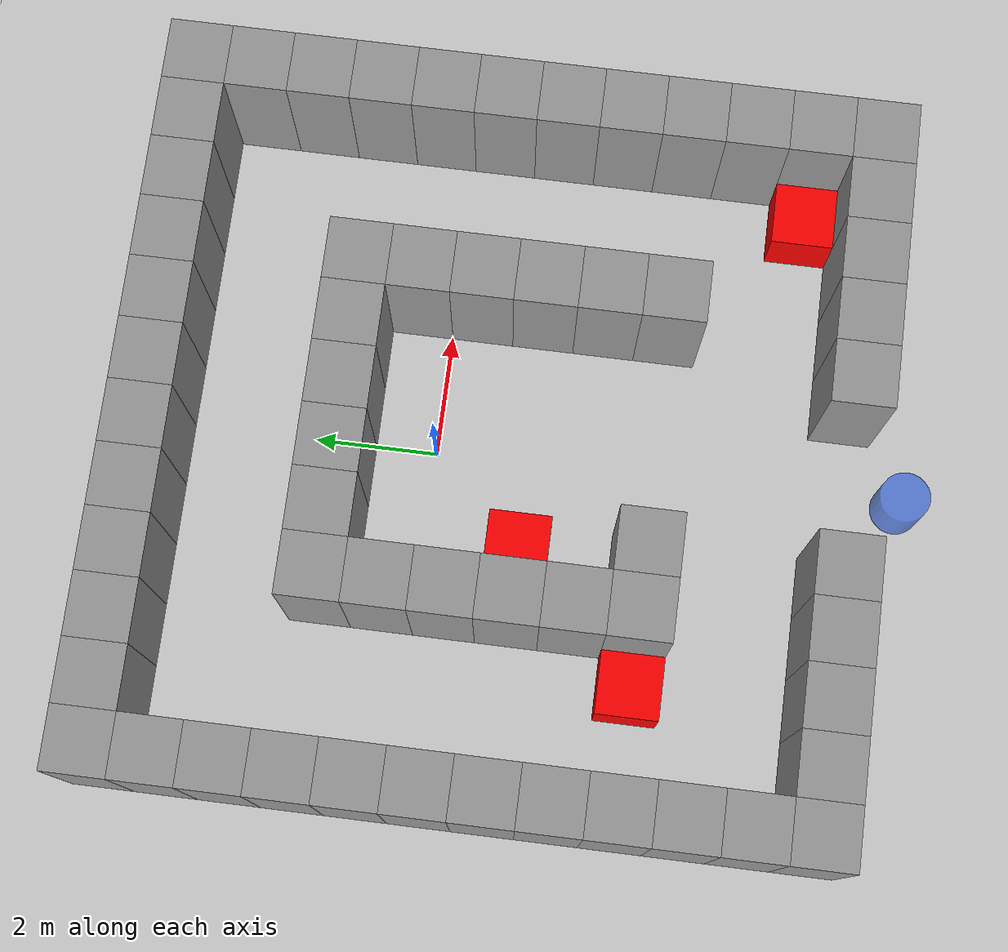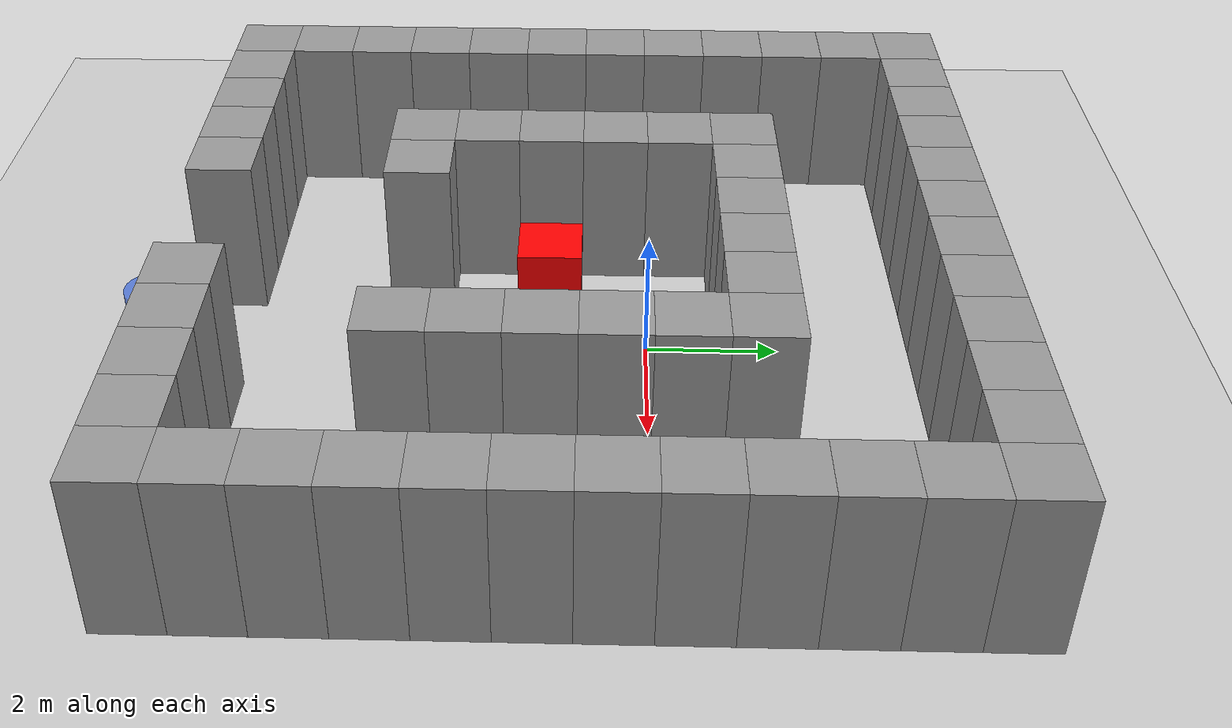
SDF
<?xml version="1.0" ?>
<sdf version="1.6">
  <world name="grid_house_world">

    <!-- =======================
         Top‐down camera (z = 50 m, looking straight down)
         ======================= -->
    <gui>
      <camera name="top_down_camera">
        <!-- pose: x, y, z, roll, pitch, yaw -->
        <!-- pitch = –1.5708 => straight down -->
        <pose>0 0 +100  -180 -1.5708 0</pose>
      </camera>
    </gui>

    <!-- =======================
         1) STANDARD FLOOR + SUN
         ======================= -->
    <include>
      <uri>model://ground_plane</uri>
    </include>
    <include>
      <uri>model://sun</uri>
    </include>

    <!-- ROW 0: cols 0..11 are all walls -->
    <model name="wall_0_0">
      <static>true</static>
      <link name="link">
        <collision name="collision">
          <geometry>
            <box><size>1 1 2.5</size></box>
          </geometry>
        </collision>
        <visual name="visual">
          <geometry>
            <box><size>1 1 2.5</size></box>
          </geometry>
          <material>
            <ambient>0.6 0.6 0.6 1</ambient>
            <diffuse>0.6 0.6 0.6 1</diffuse>
          </material>
        </visual>
      </link>
      <!-- col=0 -->
      <pose>-5.500  4.500  1.25  0 0 0</pose>
    </model>

    <model name="wall_0_1">
      <static>true</static>
      <link name="link">
        <collision name="collision">
          <geometry>
            <box><size>1 1 2.5</size></box>
          </geometry>
        </collision>
        <visual name="visual">
          <geometry>
            <box><size>1 1 2.5</size></box>
          </geometry>
          <material>
            <ambient>0.6 0.6 0.6 1</ambient>
            <diffuse>0.6 0.6 0.6 1</diffuse>
          </material>
        </visual>
      </link>
      <!-- col=1 →  -->
      <pose>-4.500  4.500  1.25  0 0 0</pose>
    </model>

    <model name="wall_0_2">
      <static>true</static>
      <link name="link">
        <collision name="collision">
          <geometry>
            <box><size>1 1 2.5</size></box>
          </geometry>
        </collision>
        <visual name="visual">
          <geometry>
            <box><size>1 1 2.5</size></box>
          </geometry>
          <material>
            <ambient>0.6 0.6 0.6 1</ambient>
            <diffuse>0.6 0.6 0.6 1</diffuse>
          </material>
        </visual>
      </link>
      <!-- col=2 → -->
      <pose>-3.500  4.500  1.25  0 0 0</pose>
    </model>

    <model name="wall_0_3">
      <static>true</static>
      <link name="link">
        <collision name="collision">
          <geometry>
            <box><size>1 1 2.5</size></box>
          </geometry>
        </collision>
        <visual name="visual">
          <geometry>
            <box><size>1 1 2.5</size></box>
          </geometry>
          <material>
            <ambient>0.6 0.6 0.6 1</ambient>
            <diffuse>0.6 0.6 0.6 1</diffuse>
          </material>
        </visual>
      </link>
      <!-- col=3 -->
      <pose>-2.500  4.500  1.25  0 0 0</pose>
    </model>

    <model name="wall_0_4">
      <static>true</static>
      <link name="link">
        <collision name="collision">
          <geometry>
            <box><size>1 1 2.5</size></box>
          </geometry>
        </collision>
        <visual name="visual">
          <geometry>
            <box><size>1 1 2.5</size></box>
          </geometry>
          <material>
            <ambient>0.6 0.6 0.6 1</ambient>
            <diffuse>0.6 0.6 0.6 1</diffuse>
          </material>
        </visual>
      </link>
      <!-- col=4  -->
      <pose>-1.500  4.500  1.25  0 0 0</pose>
    </model>

    <model name="wall_0_5">
      <static>true</static>
      <link name="link">
        <collision name="collision">
          <geometry>
            <box><size>1 1 2.5</size></box>
          </geometry>
        </collision>
        <visual name="visual">
          <geometry>
            <box><size>1 1 2.5</size></box>
          </geometry>
          <material>
            <ambient>0.6 0.6 0.6 1</ambient>
            <diffuse>0.6 0.6 0.6 1</diffuse>
          </material>
        </visual>
      </link>
      <!-- col=5  -->
      <pose> -0.500  4.500  1.25  0 0 0</pose>
    </model>

    <model name="wall_0_6">
      <static>true</static>
      <link name="link">
        <collision name="collision">
          <geometry>
            <box><size>1 1 2.5</size></box>
          </geometry>
        </collision>
        <visual name="visual">
          <geometry>
            <box><size>1 1 2.5</size></box>
          </geometry>
          <material>
            <ambient>0.6 0.6 0.6 1</ambient>
            <diffuse>0.6 0.6 0.6 1</diffuse>
          </material>
        </visual>
      </link>
      <!-- col=6  -->
      <pose>+0.500  4.500  1.25  0 0 0</pose>
    </model>

    <model name="wall_0_7">
      <static>true</static>
      <link name="link">
        <collision name="collision">
          <geometry>
            <box><size>1 1 2.5</size></box>
          </geometry>
        </collision>
        <visual name="visual">
          <geometry>
            <box><size>1 1 2.5</size></box>
          </geometry>
          <material>
            <ambient>0.6 0.6 0.6 1</ambient>
            <diffuse>0.6 0.6 0.6 1</diffuse>
          </material>
        </visual>
      </link>
      <!-- col=7  -->
      <pose>+1.500  4.500  1.25  0 0 0</pose>
    </model>

    <model name="wall_0_8">
      <static>true</static>
      <link name="link">
        <collision name="collision">
          <geometry>
            <box><size>1 1 2.5</size></box>
          </geometry>
        </collision>
        <visual name="visual">
          <geometry>
            <box><size>1 1 2.5</size></box>
          </geometry>
          <material>
            <ambient>0.6 0.6 0.6 1</ambient>
            <diffuse>0.6 0.6 0.6 1</diffuse>
          </material>
        </visual>
      </link>
      <!-- col=8 -->
      <pose>+2.500  4.500  1.25  0 0 0</pose>
    </model>

    <model name="wall_0_9">
      <static>true</static>
      <link name="link">
        <collision name="collision">
          <geometry>
            <box><size>1 1 2.5</size></box>
          </geometry>
        </collision>
        <visual name="visual">
          <geometry>
            <box><size>1 1 2.5</size></box>
          </geometry>
          <material>
            <ambient>0.6 0.6 0.6 1</ambient>
            <diffuse>0.6 0.6 0.6 1</diffuse>
          </material>
        </visual>
      </link>
      <!-- col=9 -->
      <pose>+3.500  4.500  1.25  0 0 0</pose>
    </model>

    <model name="wall_0_10">
      <static>true</static>
      <link name="link">
        <collision name="collision">
          <geometry>
            <box><size>1 1 2.5</size></box>
          </geometry>
        </collision>
        <visual name="visual">
          <geometry>
            <box><size>1 1 2.5</size></box>
          </geometry>
          <material>
            <ambient>0.6 0.6 0.6 1</ambient>
            <diffuse>0.6 0.6 0.6 1</diffuse>
          </material>
        </visual>
      </link>
      <!-- col=10 -->
      <pose>+4.500  4.500  1.25  0 0 0</pose>
    </model>

    <model name="wall_0_11">
      <static>true</static>
      <link name="link">
        <collision name="collision">
          <geometry>
            <box><size>1 1 2.5</size></box>
          </geometry>
        </collision>
        <visual name="visual">
          <geometry>
            <box><size>1 1 2.5</size></box>
          </geometry>
          <material>
            <ambient>0.6 0.6 0.6 1</ambient>
            <diffuse>0.6 0.6 0.6 1</diffuse>
          </material>
        </visual>
      </link>
      <pose>+5.500  4.500  1.25  0 0 0</pose>
    </model>

    <model name="wall_1_0">
      <static>true</static>
      <link name="link">
        <collision name="collision">
          <geometry>
            <box><size>1 1 2.5</size></box>
          </geometry>
        </collision>
        <visual name="visual">
          <geometry>
            <box><size>1 1 2.5</size></box>
          </geometry>
          <material>
            <ambient>0.6 0.6 0.6 1</ambient>
            <diffuse>0.6 0.6 0.6 1</diffuse>
          </material>
        </visual>
      </link>
      <pose>-5.500  3.500  1.25  0 0 0</pose>
    </model>

    <model name="wall_1_11">
      <static>true</static>
      <link name="link">
        <collision name="collision">
          <geometry>
            <box><size>1 1 2.5</size></box>
          </geometry>
        </collision>
        <visual name="visual">
          <geometry>
            <box><size>1 1 2.5</size></box>
          </geometry>
          <material>
            <ambient>0.6 0.6 0.6 1</ambient>
            <diffuse>0.6 0.6 0.6 1</diffuse>
          </material>
        </visual>
      </link>
      <pose>+5.500  3.500  1.25  0 0 0</pose>
    </model>

    <model name="wall_2_0">
      <static>true</static>
      <link name="link">
        <collision name="collision">
          <geometry>
            <box><size>1 1 2.5</size></box>
          </geometry>
        </collision>
        <visual name="visual">
          <geometry>
            <box><size>1 1 2.5</size></box>
          </geometry>
          <material>
            <ambient>0.6 0.6 0.6 1</ambient>
            <diffuse>0.6 0.6 0.6 1</diffuse>
          </material>
        </visual>
      </link>
      <pose>-5.500  2.5000  1.25  0 0 0</pose>
    </model>

    <model name="wall_2_11">
      <static>true</static>
      <link name="link">
        <collision name="collision">
          <geometry>
            <box><size>1 1 2.5</size></box>
          </geometry>
        </collision>
        <visual name="visual">
          <geometry>
            <box><size>1 1 2.5</size></box>
          </geometry>
          <material>
            <ambient>0.6 0.6 0.6 1</ambient>
            <diffuse>0.6 0.6 0.6 1</diffuse>
          </material>
        </visual>
      </link>
      <pose>+5.500  2.5000  1.25  0 0 0</pose>
    </model>

    <model name="wall_3_0">
      <static>true</static>
      <link name="link">
        <collision name="collision">
          <geometry>
            <box><size>1 1 2.5</size></box>
          </geometry>
        </collision>
        <visual name="visual">
          <geometry>
            <box><size>1 1 2.5</size></box>
          </geometry>
          <material>
            <ambient>0.6 0.6 0.6 1</ambient>
            <diffuse>0.6 0.6 0.6 1</diffuse>
          </material>
        </visual>
      </link>
      <pose>-5.500  1.500  1.25  0 0 0</pose>
    </model>

    <model name="wall_3_3">
      <static>true</static>
      <link name="link">
        <collision name="collision">
          <geometry>
            <box><size>1 1 2.5</size></box>
          </geometry>
        </collision>
        <visual name="visual">
          <geometry>
            <box><size>1 1 2.5</size></box>
          </geometry>
          <material>
            <ambient>0.6 0.6 0.6 1</ambient>
            <diffuse>0.6 0.6 0.6 1</diffuse>
          </material>
        </visual>
      </link>
      <pose>-2.500  1.500  1.25  0 0 0</pose>
    </model>

    <model name="wall_3_4">
      <static>true</static>
      <link name="link">
        <collision name="collision">
          <geometry>
            <box><size>1 1 2.5</size></box>
          </geometry>
        </collision>
        <visual name="visual">
          <geometry>
            <box><size>1 1 2.5</size></box>
          </geometry>
          <material>
            <ambient>0.6 0.6 0.6 1</ambient>
            <diffuse>0.6 0.6 0.6 1</diffuse>
          </material>
        </visual>
      </link>
      <pose>-1.500  1.500  1.25  0 0 0</pose>
    </model>

    <model name="wall_3_5">
      <static>true</static>
      <link name="link">
        <collision name="collision">
          <geometry>
            <box><size>1 1 2.5</size></box>
          </geometry>
        </collision>
        <visual name="visual">
          <geometry>
            <box><size>1 1 2.5</size></box>
          </geometry>
          <material>
            <ambient>0.6 0.6 0.6 1</ambient>
            <diffuse>0.6 0.6 0.6 1</diffuse>
          </material>
        </visual>
      </link>
      <pose> -0.500  1.500  1.25  0 0 0</pose>
    </model>

    <model name="wall_3_6">
      <static>true</static>
      <link name="link">
        <collision name="collision">
          <geometry>
            <box><size>1 1 2.5</size></box>
          </geometry>
        </collision>
        <visual name="visual">
          <geometry>
            <box><size>1 1 2.5</size></box>
          </geometry>
          <material>
            <ambient>0.6 0.6 0.6 1</ambient>
            <diffuse>0.6 0.6 0.6 1</diffuse>
          </material>
        </visual>
      </link>
      <pose>+0.500  1.500  1.25  0 0 0</pose>
    </model>

    <model name="wall_3_7">
      <static>true</static>
      <link name="link">
        <collision name="collision">
          <geometry>
            <box><size>1 1 2.5</size></box>
          </geometry>
        </collision>
        <visual name="visual">
          <geometry>
            <box><size>1 1 2.5</size></box>
          </geometry>
          <material>
            <ambient>0.6 0.6 0.6 1</ambient>
            <diffuse>0.6 0.6 0.6 1</diffuse>
          </material>
        </visual>
      </link>
      <pose>+1.500  1.500  1.25  0 0 0</pose>
    </model>

    <model name="wall_3_8">
      <static>true</static>
      <link name="link">
        <collision name="collision">
          <geometry>
            <box><size>1 1 2.5</size></box>
          </geometry>
        </collision>
        <visual name="visual">
          <geometry>
            <box><size>1 1 2.5</size></box>
          </geometry>
          <material>
            <ambient>0.6 0.6 0.6 1</ambient>
            <diffuse>0.6 0.6 0.6 1</diffuse>
          </material>
        </visual>
      </link>
      <pose>+2.500  1.500  1.25  0 0 0</pose>
    </model>

    <model name="wall_3_11">
      <static>true</static>
      <link name="link">
        <collision name="collision">
          <geometry>
            <box><size>1 1 2.5</size></box>
          </geometry>
        </collision>
        <visual name="visual">
          <geometry>
            <box><size>1 1 2.5</size></box>
          </geometry>
          <material>
            <ambient>0.6 0.6 0.6 1</ambient>
            <diffuse>0.6 0.6 0.6 1</diffuse>
          </material>
        </visual>
      </link>
      <pose>+5.500  1.500  1.25  0 0 0</pose>
    </model>

    <model name="wall_4_0">
      <static>true</static>
      <link name="link">
        <collision name="collision">
          <geometry>
            <box><size>1 1 2.5</size></box>
          </geometry>
        </collision>
        <visual name="visual">
          <geometry>
            <box><size>1 1 2.5</size></box>
          </geometry>
          <material>
            <ambient>0.6 0.6 0.6 1</ambient>
            <diffuse>0.6 0.6 0.6 1</diffuse>
          </material>
        </visual>
      </link>
      <pose>-5.500  0.500  1.25  0 0 0</pose>
    </model>

    <model name="wall_4_3">
      <static>true</static>
      <link name="link">
        <collision name="collision">
          <geometry>
            <box><size>1 1 2.5</size></box>
          </geometry>
        </collision>
        <visual name="visual">
          <geometry>
            <box><size>1 1 2.5</size></box>
          </geometry>
          <material>
            <ambient>0.6 0.6 0.6 1</ambient>
            <diffuse>0.6 0.6 0.6 1</diffuse>
          </material>
        </visual>
      </link>
      <pose>-2.500  0.500  1.25  0 0 0</pose>
    </model>

    <model name="wall_4_8">
      <static>true</static>
      <link name="link">
        <collision name="collision">
          <geometry>
            <box><size>1 1 2.5</size></box>
          </geometry>
        </collision>
        <visual name="visual">
          <geometry>
            <box><size>1 1 2.5</size></box>
          </geometry>
          <material>
            <ambient>0.6 0.6 0.6 1</ambient>
            <diffuse>0.6 0.6 0.6 1</diffuse>
          </material>
        </visual>
      </link>
      <pose>+2.500  0.500  1.25  0 0 0</pose>
    </model>

    <model name="wall_4_11">
      <static>true</static>
      <link name="link">
        <collision name="collision">
          <geometry>
            <box><size>1 1 2.5</size></box>
          </geometry>
        </collision>
        <visual name="visual">
          <geometry>
            <box><size>1 1 2.5</size></box>
          </geometry>
          <material>
            <ambient>0.6 0.6 0.6 1</ambient>
            <diffuse>0.6 0.6 0.6 1</diffuse>
          </material>
        </visual>
      </link>
      <pose>+5.500  0.500  1.25  0 0 0</pose>
    </model>

    <model name="wall_5_0">
      <static>true</static>
      <link name="link">
        <collision name="collision">
          <geometry>
            <box><size>1 1 2.5</size></box>
          </geometry>
        </collision>
        <visual name="visual">
          <geometry>
            <box><size>1 1 2.5</size></box>
          </geometry>
          <material>
            <ambient>0.6 0.6 0.6 1</ambient>
            <diffuse>0.6 0.6 0.6 1</diffuse>
          </material>
        </visual>
      </link>
      <pose>-5.500  -0.500  1.25  0 0 0</pose>
    </model>

    <model name="wall_5_3">
      <static>true</static>
      <link name="link">
        <collision name="collision">
          <geometry>
            <box><size>1 1 2.5</size></box>
          </geometry>
        </collision>
        <visual name="visual">
          <geometry>
            <box><size>1 1 2.5</size></box>
          </geometry>
          <material>
            <ambient>0.6 0.6 0.6 1</ambient>
            <diffuse>0.6 0.6 0.6 1</diffuse>
          </material>
        </visual>
      </link>
      <pose>-2.500  -0.500  1.25  0 0 0</pose>
    </model>

    <model name="wall_5_8">
      <static>true</static>
      <link name="link">
        <collision name="collision">
          <geometry>
            <box><size>1 1 2.5</size></box>
          </geometry>
        </collision>
        <visual name="visual">
          <geometry>
            <box><size>1 1 2.5</size></box>
          </geometry>
          <material>
            <ambient>0.6 0.6 0.6 1</ambient>
            <diffuse>0.6 0.6 0.6 1</diffuse>
          </material>
        </visual>
      </link>
      <pose>+2.500  -0.500  1.25  0 0 0</pose>
    </model>

    <model name="wall_5_11">
      <static>true</static>
      <link name="link">
        <collision name="collision">
          <geometry>
            <box><size>1 1 2.5</size></box>
          </geometry>
        </collision>
        <visual name="visual">
          <geometry>
            <box><size>1 1 2.5</size></box>
          </geometry>
          <material>
            <ambient>0.6 0.6 0.6 1</ambient>
            <diffuse>0.6 0.6 0.6 1</diffuse>
          </material>
        </visual>
      </link>
      <pose>+5.500  -0.500  1.25  0 0 0</pose>
    </model>

    <model name="wall_6_0">
      <static>true</static>
      <link name="link">
        <collision name="collision">
          <geometry>
            <box><size>1 1 2.5</size></box>
          </geometry>
        </collision>
        <visual name="visual">
          <geometry>
            <box><size>1 1 2.5</size></box>
          </geometry>
          <material>
            <ambient>0.6 0.6 0.6 1</ambient>
            <diffuse>0.6 0.6 0.6 1</diffuse>
          </material>
        </visual>
      </link>
      <pose>-5.500 -1.500  1.25  0 0 0</pose>
    </model>

    <model name="wall_6_3">
      <static>true</static>
      <link name="link">
        <collision name="collision">
          <geometry>
            <box><size>1 1 2.5</size></box>
          </geometry>
        </collision>
        <visual name="visual">
          <geometry>
            <box><size>1 1 2.5</size></box>
          </geometry>
          <material>
            <ambient>0.6 0.6 0.6 1</ambient>
            <diffuse>0.6 0.6 0.6 1</diffuse>
          </material>
        </visual>
      </link>
      <pose>-2.500 -1.500  1.25  0 0 0</pose>
    </model>

    <model name="wall_6_8">
      <static>true</static>
      <link name="link">
        <collision name="collision">
          <geometry>
            <box><size>1 1 2.5</size></box>
          </geometry>
        </collision>
        <visual name="visual">
          <geometry>
            <box><size>1 1 2.5</size></box>
          </geometry>
          <material>
            <ambient>0.6 0.6 0.6 1</ambient>
            <diffuse>0.6 0.6 0.6 1</diffuse>
          </material>
        </visual>
      </link>
      <pose>+2.500 -1.500  1.25  0 0 0</pose>
    </model>

    <model name="wall_6_11">
      <static>true</static>
      <link name="link">
        <collision name="collision">
          <geometry>
            <box><size>1 1 2.5</size></box>
          </geometry>
        </collision>
        <visual name="visual">
          <geometry>
            <box><size>1 1 2.5</size></box>
          </geometry>
          <material>
            <ambient>0.6 0.6 0.6 1</ambient>
            <diffuse>0.6 0.6 0.6 1</diffuse>
          </material>
        </visual>
      </link>
      <pose>+5.500 -1.500  1.25  0 0 0</pose>
    </model>

    <model name="wall_7_0">
      <static>true</static>
      <link name="link">
        <collision name="collision">
          <geometry>
            <box><size>1 1 2.5</size></box>
          </geometry>
        </collision>
        <visual name="visual">
          <geometry>
            <box><size>1 1 2.5</size></box>
          </geometry>
          <material>
            <ambient>0.6 0.6 0.6 1</ambient>
            <diffuse>0.6 0.6 0.6 1</diffuse>
          </material>
        </visual>
      </link>
      <pose>-5.500 -2.500  1.25  0 0 0</pose>
    </model>

    <model name="wall_7_3">
      <static>true</static>
      <link name="link">
        <collision name="collision">
          <geometry>
            <box><size>1 1 2.5</size></box>
          </geometry>
        </collision>
        <visual name="visual">
          <geometry>
            <box><size>1 1 2.5</size></box>
          </geometry>
          <material>
            <ambient>0.6 0.6 0.6 1</ambient>
            <diffuse>0.6 0.6 0.6 1</diffuse>
          </material>
        </visual>
      </link>
      <pose>-2.500 -2.500  1.25  0 0 0</pose>
    </model>

    <model name="wall_7_8">
      <static>true</static>
      <link name="link">
        <collision name="collision">
          <geometry>
            <box><size>1 1 2.5</size></box>
          </geometry>
        </collision>
        <visual name="visual">
          <geometry>
            <box><size>1 1 2.5</size></box>
          </geometry>
          <material>
            <ambient>0.6 0.6 0.6 1</ambient>
            <diffuse>0.6 0.6 0.6 1</diffuse>
          </material>
        </visual>
      </link>
      <pose>+2.500 -2.500  1.25  0 0 0</pose>
    </model>

    <model name="wall_7_11">
      <static>true</static>
      <link name="link">
        <collision name="collision">
          <geometry>
            <box><size>1 1 2.5</size></box>
          </geometry>
        </collision>
        <visual name="visual">
          <geometry>
            <box><size>1 1 2.5</size></box>
          </geometry>
          <material>
            <ambient>0.6 0.6 0.6 1</ambient>
            <diffuse>0.6 0.6 0.6 1</diffuse>
          </material>
        </visual>
      </link>
      <pose>+5.500 -2.500  1.25  0 0 0</pose>
    </model>

    <model name="wall_8_0">
      <static>true</static>
      <link name="link">
        <collision name="collision">
          <geometry>
            <box><size>1 1 2.5</size></box>
          </geometry>
        </collision>
        <visual name="visual">
          <geometry>
            <box><size>1 1 2.5</size></box>
          </geometry>
          <material>
            <ambient>0.6 0.6 0.6 1</ambient>
            <diffuse>0.6 0.6 0.6 1</diffuse>
          </material>
        </visual>
      </link>
      <pose>-5.500 -3.500  1.25  0 0 0</pose>
    </model>

    <model name="wall_8_3">
      <static>true</static>
      <link name="link">
        <collision name="collision">
          <geometry>
            <box><size>1 1 2.5</size></box>
          </geometry>
        </collision>
        <visual name="visual">
          <geometry>
            <box><size>1 1 2.5</size></box>
          </geometry>
          <material>
            <ambient>0.6 0.6 0.6 1</ambient>
            <diffuse>0.6 0.6 0.6 1</diffuse>
          </material>
        </visual>
      </link>
      <pose>-2.500 -3.500  1.25  0 0 0</pose>
    </model>

    <model name="wall_8_4">
      <static>true</static>
      <link name="link">
        <collision name="collision">
          <geometry>
            <box><size>1 1 2.5</size></box>
          </geometry>
        </collision>
        <visual name="visual">
          <geometry>
            <box><size>1 1 2.5</size></box>
          </geometry>
          <material>
            <ambient>0.6 0.6 0.6 1</ambient>
            <diffuse>0.6 0.6 0.6 1</diffuse>
          </material>
        </visual>
      </link>
      <pose>-1.500 -3.500  1.25  0 0 0</pose>
    </model>

    <model name="wall_8_8">
      <static>true</static>
      <link name="link">
        <collision name="collision">
          <geometry>
            <box><size>1 1 2.5</size></box>
          </geometry>
        </collision>
        <visual name="visual">
          <geometry>
            <box><size>1 1 2.5</size></box>
          </geometry>
          <material>
            <ambient>0.6 0.6 0.6 1</ambient>
            <diffuse>0.6 0.6 0.6 1</diffuse>
          </material>
        </visual>
      </link>
      <pose>+2.500 -3.500  1.25  0 0 0</pose>
    </model>

    <model name="wall_8_11">
      <static>true</static>
      <link name="link">
        <collision name="collision">
          <geometry>
            <box><size>1 1 2.5</size></box>
          </geometry>
        </collision>
        <visual name="visual">
          <geometry>
            <box><size>1 1 2.5</size></box>
          </geometry>
          <material>
            <ambient>0.6 0.6 0.6 1</ambient>
            <diffuse>0.6 0.6 0.6 1</diffuse>
          </material>
        </visual>
      </link>
      <pose>+5.5000 -3.500  1.25  0 0 0</pose>
    </model>

    <model name="wall_9_0">
      <static>true</static>
      <link name="link">
        <collision name="collision">
          <geometry>
            <box><size>1 1 2.5</size></box>
          </geometry>
        </collision>
        <visual name="visual">
          <geometry>
            <box><size>1 1 2.5</size></box>
          </geometry>
          <material>
            <ambient>0.6 0.6 0.6 1</ambient>
            <diffuse>0.6 0.6 0.6 1</diffuse>
          </material>
        </visual>
      </link>
      <pose>-5.500 -4.500  1.25  0 0 0</pose>
    </model>

    <model name="wall_9_11">
      <static>true</static>
      <link name="link">
        <collision name="collision">
          <geometry>
            <box><size>1 1 2.5</size></box>
          </geometry>
        </collision>
        <visual name="visual">
          <geometry>
            <box><size>1 1 2.5</size></box>
          </geometry>
          <material>
            <ambient>0.6 0.6 0.6 1</ambient>
            <diffuse>0.6 0.6 0.6 1</diffuse>
          </material>
        </visual>
      </link>
      <pose>+5.500 -4.500  1.25  0 0 0</pose>
    </model>

    <model name="wall_10_0">
      <static>true</static>
      <link name="link">
        <collision name="collision">
          <geometry>
            <box><size>1 1 2.5</size></box>
          </geometry>
        </collision>
        <visual name="visual">
          <geometry>
            <box><size>1 1 2.5</size></box>
          </geometry>
          <material>
            <ambient>0.6 0.6 0.6 1</ambient>
            <diffuse>0.6 0.6 0.6 1</diffuse>
          </material>
        </visual>
      </link>
      <pose>-5.500 -5.500  1.25  0 0 0</pose>
    </model>

    <model name="wall_10_11">
      <static>true</static>
      <link name="link">
        <collision name="collision">
          <geometry>
            <box><size>1 1 2.5</size></box>
          </geometry>
        </collision>
        <visual name="visual">
          <geometry>
            <box><size>1 1 2.5</size></box>
          </geometry>
          <material>
            <ambient>0.6 0.6 0.6 1</ambient>
            <diffuse>0.6 0.6 0.6 1</diffuse>
          </material>
        </visual>
      </link>
      <pose>+5.500 -5.500  1.25  0 0 0</pose>
    </model>

    <model name="wall_11_0">
      <static>true</static>
      <link name="link">
        <collision name="collision">
          <geometry>
            <box><size>1 1 2.5</size></box>
          </geometry>
        </collision>
        <visual name="visual">
          <geometry>
            <box><size>1 1 2.5</size></box>
          </geometry>
          <material>
            <ambient>0.6 0.6 0.6 1</ambient>
            <diffuse>0.6 0.6 0.6 1</diffuse>
          </material>
        </visual>
      </link>
      <pose>-5.500 -6.500  1.25  0 0 0</pose>
    </model>

    <model name="wall_11_1">
      <static>true</static>
      <link name="link">
        <collision name="collision">
          <geometry>
            <box><size>1 1 2.5</size></box>
          </geometry>
        </collision>
        <visual name="visual">
          <geometry>
            <box><size>1 1 2.5</size></box>
          </geometry>
          <material>
            <ambient>0.6 0.6 0.6 1</ambient>
            <diffuse>0.6 0.6 0.6 1</diffuse>
          </material>
        </visual>
      </link>
      <pose>-4.500 -6.500  1.25  0 0 0</pose>
    </model>

    <model name="wall_11_2">
      <static>true</static>
      <link name="link">
        <collision name="collision">
          <geometry>
            <box><size>1 1 2.5</size></box>
          </geometry>
        </collision>
        <visual name="visual">
          <geometry>
            <box><size>1 1 2.5</size></box>
          </geometry>
          <material>
            <ambient>0.6 0.6 0.6 1</ambient>
            <diffuse>0.6 0.6 0.6 1</diffuse>
          </material>
        </visual>
      </link>
      <pose>-3.500 -6.500  1.25  0 0 0</pose>
    </model>

    <model name="wall_11_3">
      <static>true</static>
      <link name="link">
        <collision name="collision">
          <geometry>
            <box><size>1 1 2.5</size></box>
          </geometry>
        </collision>
        <visual name="visual">
          <geometry>
            <box><size>1 1 2.5</size></box>
          </geometry>
          <material>
            <ambient>0.6 0.6 0.6 1</ambient>
            <diffuse>0.6 0.6 0.6 1</diffuse>
          </material>
        </visual>
      </link>
      <pose>-2.500 -6.500  1.25  0 0 0</pose>
    </model>

    <model name="wall_11_4">
      <static>true</static>
      <link name="link">
        <collision name="collision">
          <geometry>
            <box><size>1 1 2.5</size></box>
          </geometry>
        </collision>
        <visual name="visual">
          <geometry>
            <box><size>1 1 2.5</size></box>
          </geometry>
          <material>
            <ambient>0.6 0.6 0.6 1</ambient>
            <diffuse>0.6 0.6 0.6 1</diffuse>
          </material>
        </visual>
      </link>
      <pose>-1.500 -6.500  1.25  0 0 0</pose>
    </model>

    <model name="wall_11_7">
      <static>true</static>
      <link name="link">
        <collision name="collision">
          <geometry>
            <box><size>1 1 2.5</size></box>
          </geometry>
        </collision>
        <visual name="visual">
          <geometry>
            <box><size>1 1 2.5</size></box>
          </geometry>
          <material>
            <ambient>0.6 0.6 0.6 1</ambient>
            <diffuse>0.6 0.6 0.6 1</diffuse>
          </material>
        </visual>
      </link>
      <pose>+1.500 -6.500  1.25  0 0 0</pose>
    </model>

    <model name="wall_11_8">
      <static>true</static>
      <link name="link">
        <collision name="collision">
          <geometry>
            <box><size>1 1 2.5</size></box>
          </geometry>
        </collision>
        <visual name="visual">
          <geometry>
            <box><size>1 1 2.5</size></box>
          </geometry>
          <material>
            <ambient>0.6 0.6 0.6 1</ambient>
            <diffuse>0.6 0.6 0.6 1</diffuse>
          </material>
        </visual>
      </link>
      <pose>+2.500 -6.500  1.25  0 0 0</pose>
    </model>

    <model name="wall_11_9">
      <static>true</static>
      <link name="link">
        <collision name="collision">
          <geometry>
            <box><size>1 1 2.5</size></box>
          </geometry>
        </collision>
        <visual name="visual">
          <geometry>
            <box><size>1 1 2.5</size></box>
          </geometry>
          <material>
            <ambient>0.6 0.6 0.6 1</ambient>
            <diffuse>0.6 0.6 0.6 1</diffuse>
          </material>
        </visual>
      </link>
      <pose>+3.500 -6.500  1.25  0 0 0</pose>
    </model>

    <model name="wall_11_10">
      <static>true</static>
      <link name="link">
        <collision name="collision">
          <geometry>
            <box><size>1 1 2.5</size></box>
          </geometry>
        </collision>
        <visual name="visual">
          <geometry>
            <box><size>1 1 2.5</size></box>
          </geometry>
          <material>
            <ambient>0.6 0.6 0.6 1</ambient>
            <diffuse>0.6 0.6 0.6 1</diffuse>
          </material>
        </visual>
      </link>
      <pose>+4.500 -6.500  1.25  0 0 0</pose>
    </model>

    <model name="wall_11_11">
      <static>true</static>
      <link name="link">
        <collision name="collision">
          <geometry>
            <box><size>1 1 2.5</size></box>
          </geometry>
        </collision>
        <visual name="visual">
          <geometry>
            <box><size>1 1 2.5</size></box>
          </geometry>
          <material>
            <ambient>0.6 0.6 0.6 1</ambient>
            <diffuse>0.6 0.6 0.6 1</diffuse>
          </material>
        </visual>
      </link>
      <pose>+5.500 -6.500  1.25  0 0 0</pose>
    </model>

    <model name="fire_marker1">
      <static>true</static>
      <link name="link">
        <visual name="visual">
          <geometry>
            <box><size>1 1 1</size></box>
          </geometry>
          <material>
            <ambient>1 0 0 1</ambient>
            <diffuse>1 0 0 1</diffuse>
          </material>
        </visual>
      </link>
      <pose>+4.500  -5.500  0.50  0 0 0</pose>
    </model>

    <model name="fire_marker2">
      <static>true</static>
      <link name="link">
        <visual name="visual">
          <geometry>
            <box><size>1 1 1</size></box>
          </geometry>
          <material>
            <ambient>1 0 0 1</ambient>
            <diffuse>1 0 0 1</diffuse>
          </material>
        </visual>
      </link>
      <pose> -1.500  -1.500  0.50  0 0 0</pose>
    </model>

    <model name="fire_marker3">
      <static>true</static>
      <link name="link">
        <visual name="visual">
          <geometry>
            <box><size>1 1 1</size></box>
          </geometry>
          <material>
            <ambient>1 0 0 1</ambient>
            <diffuse>1 0 0 1</diffuse>
          </material>
        </visual>
      </link>
      <pose>-3.500 -3.500  0.50  0 0 0</pose>
    </model>

    <model name="fire_marker5">
      <static>true</static>
      <link name="link">
        <visual name="tank">
          <geometry>
            <cylinder>
              <radius>0.4</radius>
              <length>1.0</length>
            </cylinder>
          </geometry>
          <material>
            <ambient>0.2 0.4 0.9 0.7</ambient>
            <diffuse>0.2 0.4 0.9 0.7</diffuse>
            <specular>0.8 0.8 1 1</specular>
          </material>
        </visual>
      </link>
      <pose> 0.000 -7.500  0.50  0 0 0</pose>
    </model>

  </world>
</sdf>
